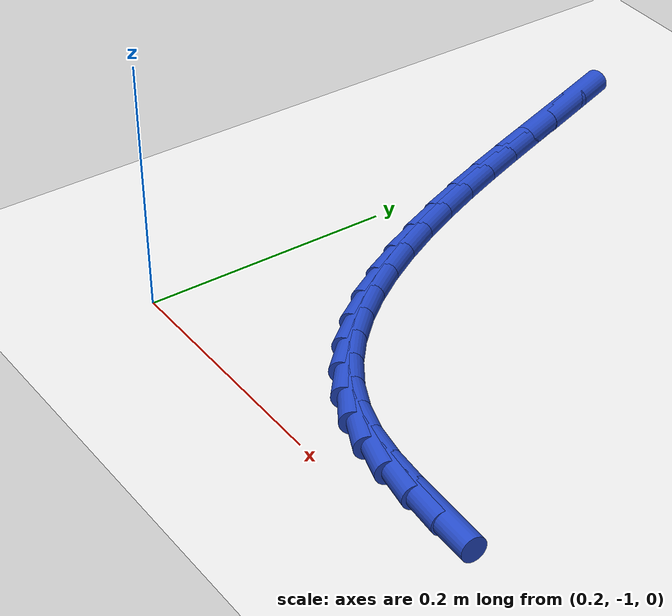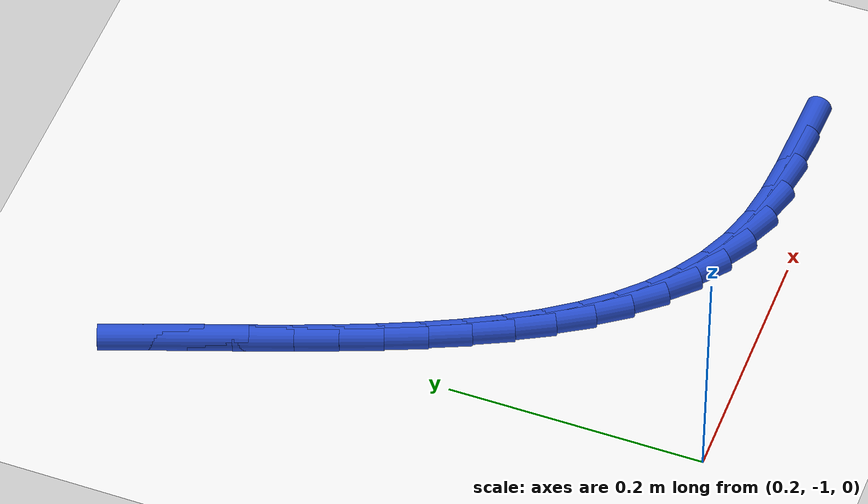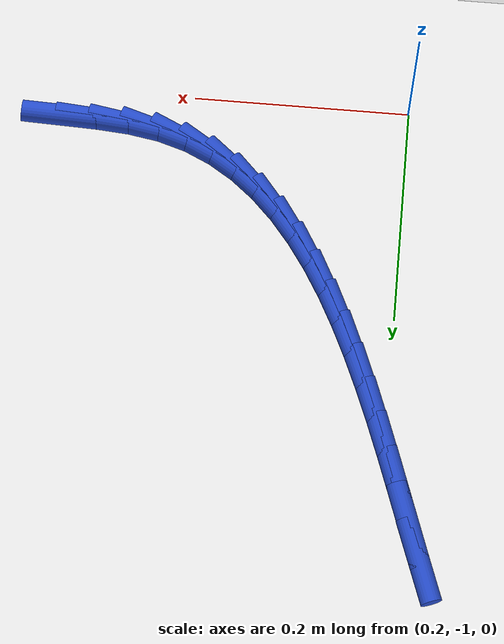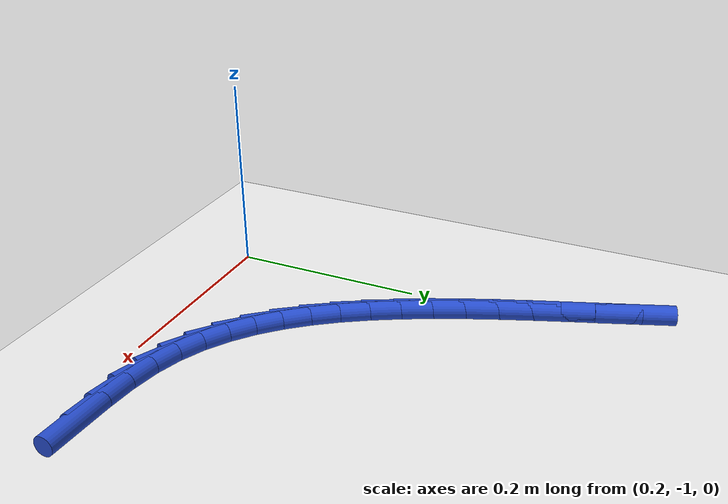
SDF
<sdf version="1.6">
 <world name="default">
  <model name="ground_plane">
   <static>1</static>
   <link name="link">
    <collision name="collision">
     <geometry><plane><normal>0 0 1</normal><size>100 100</size></plane></geometry>
     <surface><friction><ode><mu>100</mu><mu2>50</mu2></ode></friction></surface>
    </collision>
    <visual name="visual">
     <cast_shadows>0</cast_shadows>
     <geometry><plane><normal>0 0 1</normal><size>100 100</size></plane></geometry>
     <material>
      <script><uri>file://media/materials/scripts/gazebo.material</uri><name>Gazebo/WhiteGlow</name></script>
     </material>
    </visual>
   </link>
  </model>
  <model name="line">
   <link name="link_201">
    <pose>0.5200183674829656 -0.9709420974625258 0.01 0 1.57 -0.03619122411792249</pose>
    <collision name="collision">
     <geometry><cylinder><radius>0.01</radius><length>0.08</length></cylinder></geometry>
    </collision>
    <visual name="visual">
     <material>
      <script><name>Gazebo/Blue</name><uri>file://media/materials/scripts/gazebo.material</uri></script>
     </material>
     <geometry><cylinder><radius>0.01</radius><length>0.08</length></cylinder></geometry>
    </visual>
   </link>
   <link name="link_202">
    <pose>0.48867884768427616 -0.969807386417857 0.01 0 1.57 -0.07933799026164105</pose>
    <collision name="collision">
     <geometry><cylinder><radius>0.01</radius><length>0.08</length></cylinder></geometry>
    </collision>
    <visual name="visual">
     <material>
      <script><name>Gazebo/Blue</name><uri>file://media/materials/scripts/gazebo.material</uri></script>
     </material>
     <geometry><cylinder><radius>0.01</radius><length>0.08</length></cylinder></geometry>
    </visual>
   </link>
   <link name="link_203">
    <pose>0.4581920427803217 -0.9673835367979134 0.01 0 1.57 -0.16401392946637328</pose>
    <collision name="collision">
     <geometry><cylinder><radius>0.01</radius><length>0.08</length></cylinder></geometry>
    </collision>
    <visual name="visual">
     <material>
      <script><name>Gazebo/Blue</name><uri>file://media/materials/scripts/gazebo.material</uri></script>
     </material>
     <geometry><cylinder><radius>0.01</radius><length>0.08</length></cylinder></geometry>
    </visual>
   </link>
   <link name="link_204">
    <pose>0.42919664579162103 -0.9625847806779938 0.01 0 1.57 -0.2910709561176133</pose>
    <collision name="collision">
     <geometry><cylinder><radius>0.01</radius><length>0.08</length></cylinder></geometry>
    </collision>
    <visual name="visual">
     <material>
      <script><name>Gazebo/Blue</name><uri>file://media/materials/scripts/gazebo.material</uri></script>
     </material>
     <geometry><cylinder><radius>0.01</radius><length>0.08</length></cylinder></geometry>
    </visual>
   </link>
   <link name="link_205">
    <pose>0.40222609222385314 -0.9545049561342659 0.01 0 1.57 -0.42836875241191413</pose>
    <collision name="collision">
     <geometry><cylinder><radius>0.01</radius><length>0.08</length></cylinder></geometry>
    </collision>
    <visual name="visual">
     <material>
      <script><name>Gazebo/Blue</name><uri>file://media/materials/scripts/gazebo.material</uri></script>
     </material>
     <geometry><cylinder><radius>0.01</radius><length>0.08</length></cylinder></geometry>
    </visual>
   </link>
   <link name="link_206">
    <pose>0.3772963711112176 -0.9431208452450071 0.01 0 1.57 -0.5600332365104776</pose>
    <collision name="collision">
     <geometry><cylinder><radius>0.01</radius><length>0.08</length></cylinder></geometry>
    </collision>
    <visual name="visual">
     <material>
      <script><name>Gazebo/Blue</name><uri>file://media/materials/scripts/gazebo.material</uri></script>
     </material>
     <geometry><cylinder><radius>0.01</radius><length>0.08</length></cylinder></geometry>
    </visual>
   </link>
   <link name="link_207">
    <pose>0.3542647283838328 -0.9286801011434752 0.01 0 1.57 -0.681257093772367</pose>
    <collision name="collision">
     <geometry><cylinder><radius>0.01</radius><length>0.08</length></cylinder></geometry>
    </collision>
    <visual name="visual">
     <material>
      <script><name>Gazebo/Blue</name><uri>file://media/materials/scripts/gazebo.material</uri></script>
     </material>
     <geometry><cylinder><radius>0.01</radius><length>0.08</length></cylinder></geometry>
    </visual>
   </link>
   <link name="link_208">
    <pose>0.33298836801953396 -0.9114304485481411 0.01 0 1.57 -0.7891210955442455</pose>
    <collision name="collision">
     <geometry><cylinder><radius>0.01</radius><length>0.08</length></cylinder></geometry>
    </collision>
    <visual name="visual">
     <material>
      <script><name>Gazebo/Blue</name><uri>file://media/materials/scripts/gazebo.material</uri></script>
     </material>
     <geometry><cylinder><radius>0.01</radius><length>0.08</length></cylinder></geometry>
    </visual>
   </link>
   <link name="link_209">
    <pose>0.31332449399615847 -0.8916196121774765 0.01 0 1.57 -0.8825678658926075</pose>
    <collision name="collision">
     <geometry><cylinder><radius>0.01</radius><length>0.08</length></cylinder></geometry>
    </collision>
    <visual name="visual">
     <material>
      <script><name>Gazebo/Blue</name><uri>file://media/materials/scripts/gazebo.material</uri></script>
     </material>
     <geometry><cylinder><radius>0.01</radius><length>0.08</length></cylinder></geometry>
    </visual>
   </link>
   <link name="link_210">
    <pose>0.2951303102915418 -0.8694953167499517 0.01 0 1.57 -0.9618963788344033</pose>
    <collision name="collision">
     <geometry><cylinder><radius>0.01</radius><length>0.08</length></cylinder></geometry>
    </collision>
    <visual name="visual">
     <material>
      <script><name>Gazebo/Blue</name><uri>file://media/materials/scripts/gazebo.material</uri></script>
     </material>
     <geometry><cylinder><radius>0.01</radius><length>0.08</length></cylinder></geometry>
    </visual>
   </link>
   <link name="link_211">
    <pose>0.2782630208835199 -0.8453052869840384 0.01 0 1.57 -1.0281641810943776</pose>
    <collision name="collision">
     <geometry><cylinder><radius>0.01</radius><length>0.08</length></cylinder></geometry>
    </collision>
    <visual name="visual">
     <material>
      <script><name>Gazebo/Blue</name><uri>file://media/materials/scripts/gazebo.material</uri></script>
     </material>
     <geometry><cylinder><radius>0.01</radius><length>0.08</length></cylinder></geometry>
    </visual>
   </link>
   <link name="link_212">
    <pose>0.26257982974992866 -0.8192972475982069 0.01 0 1.57 -1.082719635698422</pose>
    <collision name="collision">
     <geometry><cylinder><radius>0.01</radius><length>0.08</length></cylinder></geometry>
    </collision>
    <visual name="visual">
     <material>
      <script><name>Gazebo/Blue</name><uri>file://media/materials/scripts/gazebo.material</uri></script>
     </material>
     <geometry><cylinder><radius>0.01</radius><length>0.08</length></cylinder></geometry>
    </visual>
   </link>
   <link name="link_213">
    <pose>0.24793794086860435 -0.7917189233109285 0.01 0 1.57 -1.126911553255946</pose>
    <collision name="collision">
     <geometry><cylinder><radius>0.01</radius><length>0.08</length></cylinder></geometry>
    </collision>
    <visual name="visual">
     <material>
      <script><name>Gazebo/Blue</name><uri>file://media/materials/scripts/gazebo.material</uri></script>
     </material>
     <geometry><cylinder><radius>0.01</radius><length>0.08</length></cylinder></geometry>
    </visual>
   </link>
   <link name="link_214">
    <pose>0.2341945582173828 -0.7628180388406739 0.01 0 1.57 -1.1619392283730208</pose>
    <collision name="collision">
     <geometry><cylinder><radius>0.01</radius><length>0.08</length></cylinder></geometry>
    </collision>
    <visual name="visual">
     <material>
      <script><name>Gazebo/Blue</name><uri>file://media/materials/scripts/gazebo.material</uri></script>
     </material>
     <geometry><cylinder><radius>0.01</radius><length>0.08</length></cylinder></geometry>
    </visual>
   </link>
   <link name="link_215">
    <pose>0.2212068857740998 -0.7328423189059132 0.01 0 1.57 -1.1887900379555048</pose>
    <collision name="collision">
     <geometry><cylinder><radius>0.01</radius><length>0.08</length></cylinder></geometry>
    </collision>
    <visual name="visual">
     <material>
      <script><name>Gazebo/Blue</name><uri>file://media/materials/scripts/gazebo.material</uri></script>
     </material>
     <geometry><cylinder><radius>0.01</radius><length>0.08</length></cylinder></geometry>
    </visual>
   </link>
   <link name="link_216">
    <pose>0.20883212751659208 -0.7020394882251197 0.01 0 1.57 -1.208223100186482</pose>
    <collision name="collision">
     <geometry><cylinder><radius>0.01</radius><length>0.08</length></cylinder></geometry>
    </collision>
    <visual name="visual">
     <material>
      <script><name>Gazebo/Blue</name><uri>file://media/materials/scripts/gazebo.material</uri></script>
     </material>
     <geometry><cylinder><radius>0.01</radius><length>0.08</length></cylinder></geometry>
    </visual>
   </link>
   <link name="link_217">
    <pose>0.19692748742269528 -0.6706572715167628 0.01 0 1.57 -1.220772709761445</pose>
    <collision name="collision">
     <geometry><cylinder><radius>0.01</radius><length>0.08</length></cylinder></geometry>
    </collision>
    <visual name="visual">
     <material>
      <script><name>Gazebo/Blue</name><uri>file://media/materials/scripts/gazebo.material</uri></script>
     </material>
     <geometry><cylinder><radius>0.01</radius><length>0.08</length></cylinder></geometry>
    </visual>
   </link>
   <link name="link_218">
    <pose>0.1853501694702454 -0.6389433934993137 0.01 0 1.57 -1.2267566951544981</pose>
    <collision name="collision">
     <geometry><cylinder><radius>0.01</radius><length>0.08</length></cylinder></geometry>
    </collision>
    <visual name="visual">
     <material>
      <script><name>Gazebo/Blue</name><uri>file://media/materials/scripts/gazebo.material</uri></script>
     </material>
     <geometry><cylinder><radius>0.01</radius><length>0.08</length></cylinder></geometry>
    </visual>
   </link>
   <link name="link_219">
    <pose>0.17395737763707858 -0.6071455788912438 0.01 0 1.57 -1.226281825661717</pose>
    <collision name="collision">
     <geometry><cylinder><radius>0.01</radius><length>0.08</length></cylinder></geometry>
    </collision>
    <visual name="visual">
     <material>
      <script><name>Gazebo/Blue</name><uri>file://media/materials/scripts/gazebo.material</uri></script>
     </material>
     <geometry><cylinder><radius>0.01</radius><length>0.08</length></cylinder></geometry>
    </visual>
   </link>
   <link name="link_220">
    <pose>0.16260631590103072 -0.5755115524110235 0.01 0 1.57 -1.2192422023540699</pose>
    <collision name="collision">
     <geometry><cylinder><radius>0.01</radius><length>0.08</length></cylinder></geometry>
    </collision>
    <visual name="visual">
     <material>
      <script><name>Gazebo/Blue</name><uri>file://media/materials/scripts/gazebo.material</uri></script>
     </material>
     <geometry><cylinder><radius>0.01</radius><length>0.08</length></cylinder></geometry>
    </visual>
   </link>
  </model>
 </world>
</sdf>
